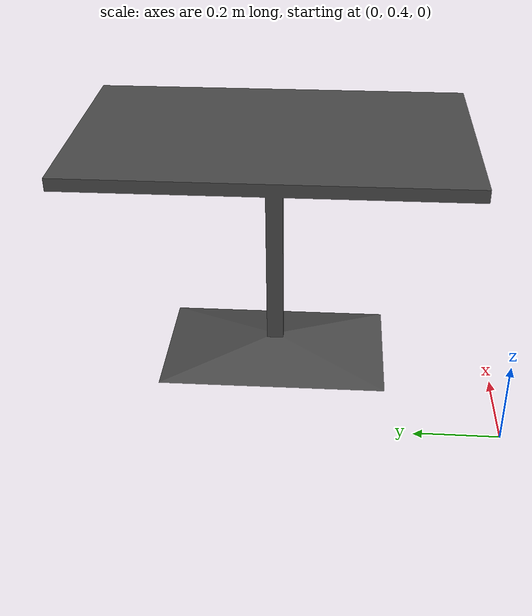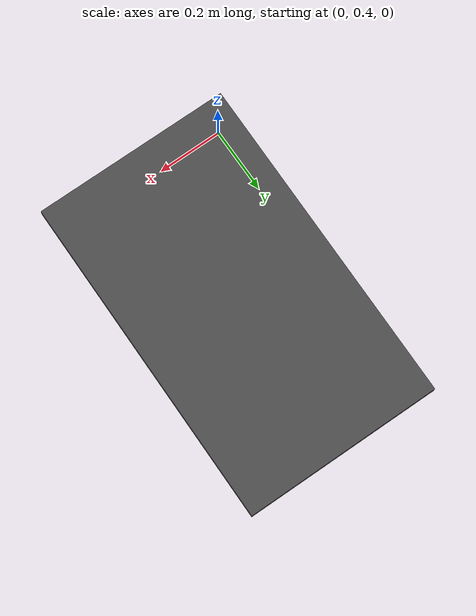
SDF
<?xml version='1.0'?>
<sdf version="1.5">
    <model name='short_table_clone'>
      <link name='short_table_clone'>
        <pose frame=''>-0 0 0 0 -0 0</pose>
        <inertial>
          <mass>1</mass>
          <inertia>
            <ixx>0.166667</ixx>
            <ixy>0</ixy>
            <ixz>0</ixz>
            <iyy>0.166667</iyy>
            <iyz>0</iyz>
            <izz>0.166667</izz>
          </inertia>
        </inertial>
        <visual name='visual'>
          <pose frame=''>0 0 0 0 -0 0</pose>
          <geometry>
            <mesh>
              <uri>model://short_table/meshes/short_table.dae</uri>
              <scale>1 1 1</scale>
            </mesh>
          </geometry>
          <material>
            <lighting>1</lighting>
            <script>
              <uri>file://media/materials/scripts/gazebo.material</uri>
              <name>Gazebo/DarkGray</name>
            </script>
          </material>
          <transparency>0</transparency>
          <cast_shadows>1</cast_shadows>
        </visual>
        <collision name='collision'>
          <laser_retro>0</laser_retro>
          <max_contacts>10</max_contacts>
          <pose frame=''>0 0 0 0 -0 0</pose>
          <geometry>
            <mesh>
              <uri>model://short_table/meshes/short_table.dae</uri>
              <scale>1 1 1</scale>
            </mesh>
          </geometry>
          <surface>
            <friction>
              <ode>
                <mu>1</mu>
                <mu2>1</mu2>
                <fdir1>0 0 0</fdir1>
                <slip1>0</slip1>
                <slip2>0</slip2>
              </ode>
              <torsional>
                <coefficient>1</coefficient>
                <patch_radius>0</patch_radius>
                <surface_radius>0</surface_radius>
                <use_patch_radius>1</use_patch_radius>
                <ode>
                  <slip>0</slip>
                </ode>
              </torsional>
            </friction>
            <bounce>
              <restitution_coefficient>0</restitution_coefficient>
              <threshold>1e+06</threshold>
            </bounce>
            <contact>
              <collide_without_contact>0</collide_without_contact>
              <collide_without_contact_bitmask>1</collide_without_contact_bitmask>
              <collide_bitmask>1</collide_bitmask>
              <ode>
                <soft_cfm>0</soft_cfm>
                <soft_erp>0.2</soft_erp>
                <kp>1e+13</kp>
                <kd>1</kd>
                <max_vel>0.01</max_vel>
                <min_depth>0</min_depth>
              </ode>
              <bullet>
                <split_impulse>1</split_impulse>
                <split_impulse_penetration_threshold>-0.01</split_impulse_penetration_threshold>
                <soft_cfm>0</soft_cfm>
                <soft_erp>0.2</soft_erp>
                <kp>1e+13</kp>
                <kd>1</kd>
              </bullet>
            </contact>
          </surface>
        </collision>
        <self_collide>0</self_collide>
        <kinematic>0</kinematic>
      </link>
      <static>1</static>
      <allow_auto_disable>1</allow_auto_disable>
      <pose frame=''>0.313898 0.939936 0 0 -0 0</pose>
    </model>
</sdf>
